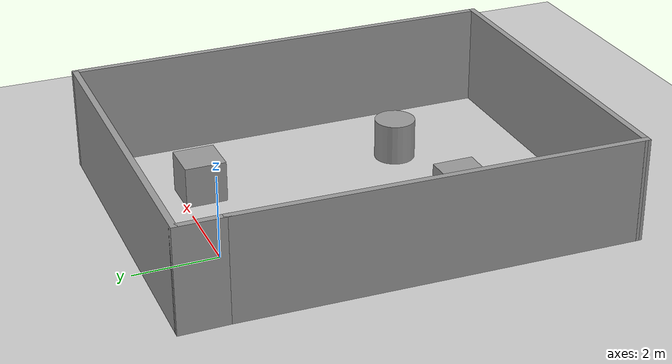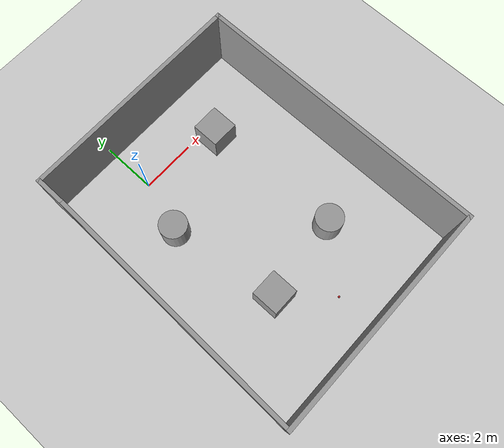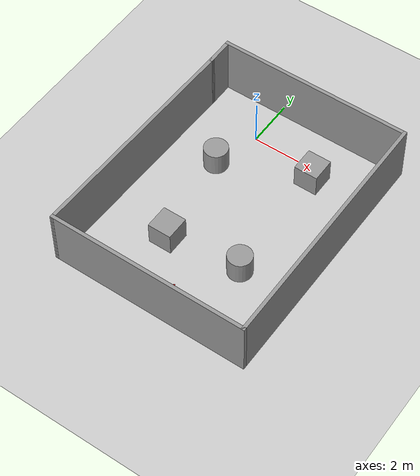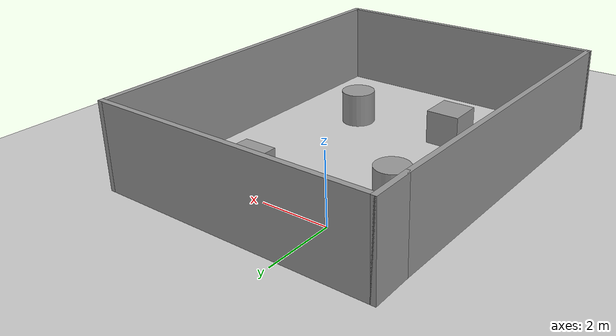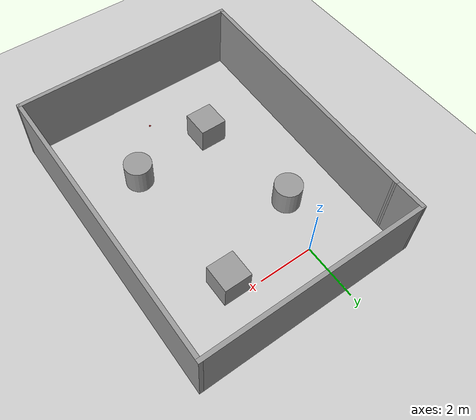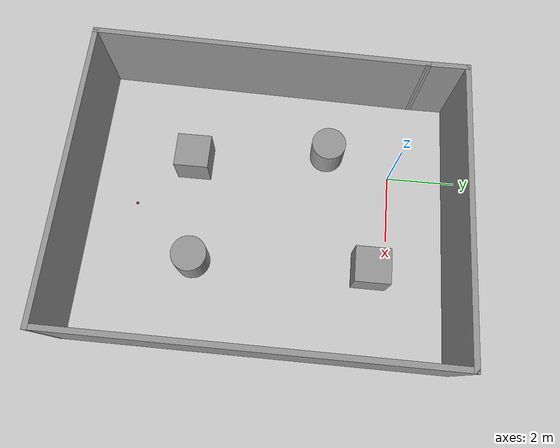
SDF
<sdf version="1.6">
 <world name="default">
  <light name="sun" type="directional">
   <pose>0 0 10 0 -0 0</pose>
   <diffuse>0.8 0.8 0.8 1</diffuse>
   <specular>0.2 0.2 0.2 1</specular>
   <attenuation>
    <range>1000</range>
    <constant>0.9</constant>
    <linear>0.01</linear>
    <quadratic>0.001</quadratic>
   </attenuation>
   <direction>-0.5 0.1 -0.9</direction>
  </light>
  <model name="ground_plane">
   <static>1</static>
   <link name="link">
    <collision name="collision">
     <geometry><plane><normal>0 0 1</normal><size>100 100</size></plane></geometry>
     <surface>
      <contact><collide_bitmask>65535</collide_bitmask></contact>
      <friction><ode><mu>100</mu><mu2>50</mu2></ode></friction>
     </surface>
    </collision>
    <visual name="visual">
     <cast_shadows>0</cast_shadows>
     <geometry><plane><normal>0 0 1</normal><size>100 100</size></plane></geometry>
     <material>
      <script><uri>file://media/materials/scripts/gazebo.material</uri><name>Gazebo/Grey</name></script>
     </material>
    </visual>
   </link>
  </model>
  <gravity>0 0 -9.8</gravity>
  <magnetic_field>6e-06 2.3e-05 -4.2e-05</magnetic_field>
  <atmosphere type="adiabatic"/>
  <physics name="default_physics" default="0" type="ode">
   <max_step_size>0.001</max_step_size>
   <real_time_factor>1</real_time_factor>
   <real_time_update_rate>1000</real_time_update_rate>
  </physics>
  <scene><ambient>0.4 0.4 0.4 1</ambient><background>0.7 0.7 0.7 1</background><shadows>1</shadows></scene>
  <audio><device>default</device></audio>
  <spherical_coordinates>
   <surface_model>EARTH_WGS84</surface_model>
   <latitude_deg>0</latitude_deg>
   <longitude_deg>0</longitude_deg>
   <elevation>0</elevation>
   <heading_deg>0</heading_deg>
  </spherical_coordinates>
  <model name="maze5">
   <pose>1.3695 -3.59731 0 0 -0 0</pose>
   <link name="Wall_2">
    <collision name="Wall_2_Collision">
     <geometry><box><size>1.25 0.15 2.5</size></box></geometry>
     <pose>0 0 1.25 0 -0 0</pose>
    </collision>
    <visual name="Wall_2_Visual">
     <pose>0 0 1.25 0 -0 0</pose>
     <geometry><box><size>1.25 0.15 2.5</size></box></geometry>
     <material>
      <script><uri>file://media/materials/scripts/gazebo.material</uri><name>Gazebo/Grey</name></script>
      <ambient>1 1 1 1</ambient>
     </material>
     <meta><layer>0</layer></meta>
    </visual>
    <pose>-3.92403 4.75097 0 0 -0 1.5708</pose>
   </link>
   <link name="Wall_3">
    <collision name="Wall_3_Collision">
     <geometry><box><size>8.25 0.15 2.5</size></box></geometry>
     <pose>0 0 1.25 0 -0 0</pose>
    </collision>
    <visual name="Wall_3_Visual">
     <pose>0 0 1.25 0 -0 0</pose>
     <geometry><box><size>8.25 0.15 2.5</size></box></geometry>
     <material>
      <script><uri>file://media/materials/scripts/gazebo.material</uri><name>Gazebo/Grey</name></script>
      <ambient>1 1 1 1</ambient>
     </material>
     <meta><layer>0</layer></meta>
    </visual>
    <pose>0.125973 5.30097 0 0 -0 0</pose>
   </link>
   <link name="Wall_4">
    <collision name="Wall_4_Collision">
     <geometry><box><size>10.75 0.15 2.5</size></box></geometry>
     <pose>0 0 1.25 0 -0 0</pose>
    </collision>
    <visual name="Wall_4_Visual">
     <pose>0 0 1.25 0 -0 0</pose>
     <geometry><box><size>10.75 0.15 2.5</size></box></geometry>
     <material>
      <script><uri>file://media/materials/scripts/gazebo.material</uri><name>Gazebo/Grey</name></script>
      <ambient>1 1 1 1</ambient>
     </material>
     <meta><layer>0</layer></meta>
    </visual>
    <pose>4.17597 0.000973 0 0 -0 -1.5708</pose>
   </link>
   <link name="Wall_5">
    <collision name="Wall_5_Collision">
     <geometry><box><size>8.5 0.15 2.5</size></box></geometry>
     <pose>0 0 1.25 0 -0 0</pose>
    </collision>
    <visual name="Wall_5_Visual">
     <pose>0 0 1.25 0 -0 0</pose>
     <geometry><box><size>8.5 0.15 2.5</size></box></geometry>
     <material>
      <script><uri>file://media/materials/scripts/gazebo.material</uri><name>Gazebo/Grey</name></script>
      <ambient>1 1 1 1</ambient>
     </material>
     <meta><layer>0</layer></meta>
    </visual>
    <pose>0.000973 -5.29903 0 0 -0 3.14159</pose>
   </link>
   <link name="Wall_6">
    <collision name="Wall_6_Collision">
     <geometry><box><size>9.65329 0.15 2.5</size></box></geometry>
     <pose>0 0 1.25 0 -0 0</pose>
    </collision>
    <visual name="Wall_6_Visual">
     <pose>0 0 1.25 0 -0 0</pose>
     <geometry><box><size>9.65329 0.15 2.5</size></box></geometry>
     <material>
      <script><uri>file://media/materials/scripts/gazebo.material</uri><name>Gazebo/Grey</name></script>
      <ambient>1 1 1 1</ambient>
     </material>
     <meta><layer>0</layer></meta>
    </visual>
    <pose>-4.04903 -0.549026 0 0 -0 1.54449</pose>
   </link>
   <static>1</static>
  </model>
  <model name="unit_box">
   <pose>0.0206 -5.89233 0.499995 0 -1e-05 0</pose>
   <link name="link">
    <inertial>
     <mass>1</mass>
     <inertia>
      <ixx>0.166667</ixx>
      <ixy>0</ixy>
      <ixz>0</ixz>
      <iyy>0.166667</iyy>
      <iyz>0</iyz>
      <izz>0.166667</izz>
     </inertia>
    </inertial>
    <collision name="collision"><geometry><box><size>1 1 1</size></box></geometry></collision>
    <visual name="visual">
     <geometry><box><size>1 1 1</size></box></geometry>
     <material>
      <script><name>Gazebo/Grey</name><uri>file://media/materials/scripts/gazebo.material</uri></script>
     </material>
    </visual>
   </link>
  </model>
  <model name="unit_box_0">
   <pose>2.94184 -0.494479 0.499995 1e-05 -0 0</pose>
   <link name="link">
    <inertial>
     <mass>1</mass>
     <inertia>
      <ixx>0.166667</ixx>
      <ixy>0</ixy>
      <ixz>0</ixz>
      <iyy>0.166667</iyy>
      <iyz>0</iyz>
      <izz>0.166667</izz>
     </inertia>
    </inertial>
    <collision name="collision"><geometry><box><size>1 1 1</size></box></geometry></collision>
    <visual name="visual">
     <geometry><box><size>1 1 1</size></box></geometry>
     <material>
      <script><name>Gazebo/Grey</name><uri>file://media/materials/scripts/gazebo.material</uri></script>
     </material>
    </visual>
   </link>
  </model>
  <model name="unit_cylinder">
   <pose>-0.568548 -1.91805 0.499992 -3e-06 4e-06 0</pose>
   <link name="link">
    <inertial>
     <mass>1</mass>
     <inertia><ixx>0.145833</ixx><ixy>0</ixy><ixz>0</ixz><iyy>0.145833</iyy><iyz>0</iyz><izz>0.125</izz></inertia>
    </inertial>
    <collision name="collision">
     <geometry><cylinder><radius>0.5</radius><length>1</length></cylinder></geometry>
    </collision>
    <visual name="visual">
     <geometry><cylinder><radius>0.5</radius><length>1</length></cylinder></geometry>
     <material>
      <script><name>Gazebo/Grey</name><uri>file://media/materials/scripts/gazebo.material</uri></script>
     </material>
    </visual>
   </link>
  </model>
  <model name="unit_cylinder_0">
   <pose>3.09661 -5.57732 0.499993 -3e-06 -3e-06 0</pose>
   <link name="link">
    <inertial>
     <mass>1</mass>
     <inertia><ixx>0.145833</ixx><ixy>0</ixy><ixz>0</ixz><iyy>0.145833</iyy><iyz>0</iyz><izz>0.125</izz></inertia>
    </inertial>
    <collision name="collision">
     <geometry><cylinder><radius>0.5</radius><length>1</length></cylinder></geometry>
    </collision>
    <visual name="visual">
     <geometry><cylinder><radius>0.5</radius><length>1</length></cylinder></geometry>
     <material>
      <script><name>Gazebo/Grey</name><uri>file://media/materials/scripts/gazebo.material</uri></script>
     </material>
    </visual>
   </link>
  </model>
  <model name="cricket_ball">
   <link name="link">
    <pose>0 0 0.0375 0 -0 0</pose>
    <inertial>
     <mass>0.1467</mass>
     <inertia>
      <ixx>8.25187e-05</ixx>
      <ixy>0</ixy>
      <ixz>0</ixz>
      <iyy>8.25187e-05</iyy>
      <iyz>0</iyz>
      <izz>8.25187e-05</izz>
     </inertia>
    </inertial>
    <collision name="collision">
     <geometry><sphere><radius>0.0375</radius></sphere></geometry>
     <surface>
      <contact>
       <poissons_ratio>0.347</poissons_ratio>
       <elastic_modulus>8.8e+09</elastic_modulus>
       <ode><kp>100000</kp><kd>100</kd><max_vel>100</max_vel><min_depth>0.001</min_depth></ode>
      </contact>
      <friction>
       <torsional>
        <coefficient>1</coefficient>
        <use_patch_radius>0</use_patch_radius>
        <surface_radius>0.01</surface_radius>
       </torsional>
      </friction>
     </surface>
    </collision>
    <visual name="visual">
     <geometry><sphere><radius>0.0375</radius></sphere></geometry>
     <material>
      <script><uri>file://media/materials/scripts/gazebo.material</uri><name>Gazebo/Red</name></script>
     </material>
    </visual>
    <velocity_decay><linear>0</linear><angular>0.005</angular></velocity_decay>
   </link>
   <pose>1.48794 -7.48699 -0.001014 0 -0 0</pose>
  </model>
 </world>
</sdf>
